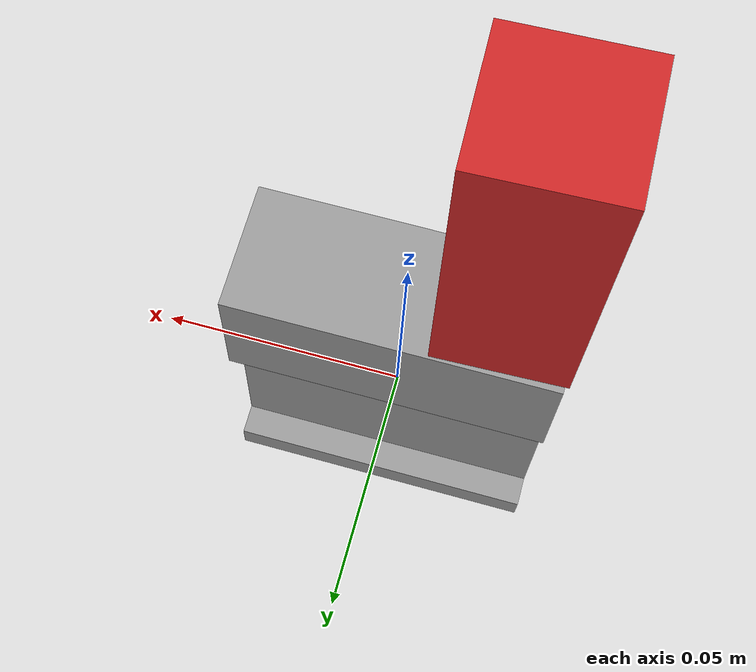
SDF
<?xml version='1.0'?>
<sdf version='1.6'>
  <model name='nerf'>
    <link name='link_0'>
      <inertial>
        <mass>0.0125</mass>
        <inertia>
          <ixx>6.9e-07</ixx>
          <ixy>0</ixy>
          <ixz>0</ixz>
          <iyy>4.24e-06</iyy>
          <iyz>0</iyz>
          <izz>4.85e-06</izz>
        </inertia>
        <pose frame=''>0 0 0 0 -0 0</pose>
      </inertial>
      <pose frame=''>-0 -0 -0.027558 0 -0 0</pose>
      <gravity>1</gravity>
      <self_collide>0</self_collide>
      <kinematic>0</kinematic>
      <enable_wind>0</enable_wind>
      <visual name='visual'>
        <pose frame=''>0 0 0 0 -0 0</pose>
        <geometry>
          <box>
            <size>0.0635 0.025 0.00635</size>
          </box>
        </geometry>
        <material>
          <lighting>1</lighting>
          <script>
            <uri>file://media/materials/scripts/gazebo.material</uri>
            <name>Gazebo/Grey</name>
          </script>
          <shader type='pixel'>
            <normal_map>__default__</normal_map>
          </shader>
          <ambient>0.3 0.3 0.3 1</ambient>
          <diffuse>0.7 0.7 0.7 1</diffuse>
          <specular>0.01 0.01 0.01 1</specular>
          <emissive>0 0 0 1</emissive>
        </material>
        <transparency>0</transparency>
        <cast_shadows>1</cast_shadows>
      </visual>
      <collision name='collision'>
        <laser_retro>0</laser_retro>
        <max_contacts>10</max_contacts>
        <pose frame=''>0 0 0 0 -0 0</pose>
        <geometry>
          <box>
            <size>0.0635 0.025 0.00635</size>
          </box>
        </geometry>
        <surface>
          <friction>
            <ode>
              <mu>1</mu>
              <mu2>1</mu2>
              <fdir1>0 0 0</fdir1>
              <slip1>0</slip1>
              <slip2>0</slip2>
            </ode>
            <torsional>
              <coefficient>1</coefficient>
              <patch_radius>0</patch_radius>
              <surface_radius>0</surface_radius>
              <use_patch_radius>1</use_patch_radius>
              <ode>
                <slip>0</slip>
              </ode>
            </torsional>
          </friction>
          <bounce>
            <restitution_coefficient>0</restitution_coefficient>
            <threshold>1e+06</threshold>
          </bounce>
          <contact>
            <collide_without_contact>0</collide_without_contact>
            <collide_without_contact_bitmask>1</collide_without_contact_bitmask>
            <collide_bitmask>1</collide_bitmask>
            <ode>
              <soft_cfm>0</soft_cfm>
              <soft_erp>0.2</soft_erp>
              <kp>1e+13</kp>
              <kd>1</kd>
              <max_vel>0.01</max_vel>
              <min_depth>0</min_depth>
            </ode>
            <bullet>
              <split_impulse>1</split_impulse>
              <split_impulse_penetration_threshold>-0.01</split_impulse_penetration_threshold>
              <soft_cfm>0</soft_cfm>
              <soft_erp>0.2</soft_erp>
              <kp>1e+13</kp>
              <kd>1</kd>
            </bullet>
          </contact>
        </surface>
      </collision>
    </link>
    <link name='link_0_0'>
      <inertial>
        <mass>0.0509448</mass>
        <inertia>
          <ixx>2.042e-05</ixx>
          <ixy>0</ixy>
          <ixz>0</ixz>
          <iyy>2.051e-05</iyy>
          <iyz>0</iyz>
          <izz>5.39e-06</izz>
        </inertia>
        <pose frame=''>0 0 0 0 -0 0</pose>
      </inertial>
      <pose frame=''>-0.019415 -0.00061 0.077295 1e-05 6.4e-05 0.031358</pose>
      <gravity>1</gravity>
      <self_collide>0</self_collide>
      <kinematic>0</kinematic>
      <enable_wind>0</enable_wind>
      <visual name='visual'>
        <pose frame=''>0 0 0 0 -0 0</pose>
        <geometry>
          <box>
            <size>0.0254 0.025 0.0647</size>
          </box>
        </geometry>
        <material>
          <lighting>1</lighting>
          <script>
            <uri>file://media/materials/scripts/gazebo.material</uri>
            <name>Gazebo/Red</name>
          </script>
          <shader type='pixel'>
            <normal_map>__default__</normal_map>
          </shader>
          <ambient>0.3 0.3 0.3 1</ambient>
          <diffuse>0.7 0.7 0.7 1</diffuse>
          <specular>0.01 0.01 0.01 1</specular>
          <emissive>0 0 0 1</emissive>
        </material>
        <transparency>0</transparency>
        <cast_shadows>1</cast_shadows>
      </visual>
      <collision name='collision'>
        <laser_retro>0</laser_retro>
        <max_contacts>10</max_contacts>
        <pose frame=''>0 0 0 0 -0 0</pose>
        <geometry>
          <box>
            <size>0.0254 0.025 0.0647</size>
          </box>
        </geometry>
        <surface>
          <friction>
            <ode>
              <mu>1</mu>
              <mu2>1</mu2>
              <fdir1>0 0 0</fdir1>
              <slip1>0</slip1>
              <slip2>0</slip2>
            </ode>
            <torsional>
              <coefficient>1</coefficient>
              <patch_radius>0</patch_radius>
              <surface_radius>0</surface_radius>
              <use_patch_radius>1</use_patch_radius>
              <ode>
                <slip>0</slip>
              </ode>
            </torsional>
          </friction>
          <bounce>
            <restitution_coefficient>0</restitution_coefficient>
            <threshold>1e+06</threshold>
          </bounce>
          <contact>
            <collide_without_contact>0</collide_without_contact>
            <collide_without_contact_bitmask>1</collide_without_contact_bitmask>
            <collide_bitmask>1</collide_bitmask>
            <ode>
              <soft_cfm>0</soft_cfm>
              <soft_erp>0.2</soft_erp>
              <kp>1e+13</kp>
              <kd>1</kd>
              <max_vel>0.01</max_vel>
              <min_depth>0</min_depth>
            </ode>
            <bullet>
              <split_impulse>1</split_impulse>
              <split_impulse_penetration_threshold>-0.01</split_impulse_penetration_threshold>
              <soft_cfm>0</soft_cfm>
              <soft_erp>0.2</soft_erp>
              <kp>1e+13</kp>
              <kd>1</kd>
            </bullet>
          </contact>
        </surface>
      </collision>
    </link>
    <link name='link_1'>
      <inertial>
        <mass>0.0413385</mass>
        <inertia>
          <ixx>6.62e-06</ixx>
          <ixy>0</ixy>
          <ixz>0</ixz>
          <iyy>1.997e-05</iyy>
          <iyz>0</iyz>
          <izz>1.443e-05</izz>
        </inertia>
        <pose frame=''>0 0 0 0 -0 0</pose>
      </inertial>
      <pose frame=''>0 -0 -0.003383 0 -0 0</pose>
      <gravity>1</gravity>
      <self_collide>0</self_collide>
      <kinematic>0</kinematic>
      <enable_wind>0</enable_wind>
      <visual name='visual'>
        <pose frame=''>0 0 0 0 -0 0</pose>
        <geometry>
          <box>
            <size>0.0635 0.0125 0.042</size>
          </box>
        </geometry>
        <material>
          <lighting>1</lighting>
          <script>
            <uri>file://media/materials/scripts/gazebo.material</uri>
            <name>Gazebo/Grey</name>
          </script>
          <shader type='pixel'>
            <normal_map>__default__</normal_map>
          </shader>
          <emissive>0 0 0 1</emissive>
          <ambient>0.3 0.3 0.3 1</ambient>
          <diffuse>0.7 0.7 0.7 1</diffuse>
          <specular>0.01 0.01 0.01 1</specular>
        </material>
        <transparency>0</transparency>
        <cast_shadows>1</cast_shadows>
      </visual>
      <collision name='collision'>
        <laser_retro>0</laser_retro>
        <max_contacts>10</max_contacts>
        <pose frame=''>0 0 0 0 -0 0</pose>
        <geometry>
          <box>
            <size>0.0635 0.0125 0.042</size>
          </box>
        </geometry>
        <surface>
          <friction>
            <ode>
              <mu>1</mu>
              <mu2>1</mu2>
              <fdir1>0 0 0</fdir1>
              <slip1>0</slip1>
              <slip2>0</slip2>
            </ode>
            <torsional>
              <coefficient>1</coefficient>
              <patch_radius>0</patch_radius>
              <surface_radius>0</surface_radius>
              <use_patch_radius>1</use_patch_radius>
              <ode>
                <slip>0</slip>
              </ode>
            </torsional>
          </friction>
          <bounce>
            <restitution_coefficient>0</restitution_coefficient>
            <threshold>1e+06</threshold>
          </bounce>
          <contact>
            <collide_without_contact>0</collide_without_contact>
            <collide_without_contact_bitmask>1</collide_without_contact_bitmask>
            <collide_bitmask>1</collide_bitmask>
            <ode>
              <soft_cfm>0</soft_cfm>
              <soft_erp>0.2</soft_erp>
              <kp>1e+13</kp>
              <kd>1</kd>
              <max_vel>0.01</max_vel>
              <min_depth>0</min_depth>
            </ode>
            <bullet>
              <split_impulse>1</split_impulse>
              <split_impulse_penetration_threshold>-0.01</split_impulse_penetration_threshold>
              <soft_cfm>0</soft_cfm>
              <soft_erp>0.2</soft_erp>
              <kp>1e+13</kp>
              <kd>1</kd>
            </bullet>
          </contact>
        </surface>
      </collision>
    </link>
    <link name='link_2'>
      <inertial>
        <mass>0.0524605</mass>
        <inertia>
          <ixx>5.84e-06</ixx>
          <ixy>0</ixy>
          <ixz>0</ixz>
          <iyy>2.073e-05</iyy>
          <iyz>0</iyz>
          <izz>2.036e-05</izz>
        </inertia>
        <pose frame=''>0 0 0 0 -0 0</pose>
      </inertial>
      <pose frame=''>0 -0 0.030942 0 -0 0</pose>
      <gravity>1</gravity>
      <self_collide>0</self_collide>
      <kinematic>0</kinematic>
      <enable_wind>0</enable_wind>
      <visual name='visual'>
        <pose frame=''>0 0 0 0 -0 0</pose>
        <geometry>
          <box>
            <size>0.0635 0.025 0.02665</size>
          </box>
        </geometry>
        <material>
          <lighting>1</lighting>
          <script>
            <uri>file://media/materials/scripts/gazebo.material</uri>
            <name>Gazebo/Grey</name>
          </script>
          <shader type='pixel'>
            <normal_map>__default__</normal_map>
          </shader>
          <ambient>0.3 0.3 0.3 1</ambient>
          <diffuse>0.7 0.7 0.7 1</diffuse>
          <specular>0.01 0.01 0.01 1</specular>
          <emissive>0 0 0 1</emissive>
        </material>
        <transparency>0</transparency>
        <cast_shadows>1</cast_shadows>
      </visual>
      <collision name='collision'>
        <laser_retro>0</laser_retro>
        <max_contacts>10</max_contacts>
        <pose frame=''>0 0 0 0 -0 0</pose>
        <geometry>
          <box>
            <size>0.0635 0.025 0.02665</size>
          </box>
        </geometry>
        <surface>
          <friction>
            <ode>
              <mu>1</mu>
              <mu2>1</mu2>
              <fdir1>0 0 0</fdir1>
              <slip1>0</slip1>
              <slip2>0</slip2>
            </ode>
            <torsional>
              <coefficient>1</coefficient>
              <patch_radius>0</patch_radius>
              <surface_radius>0</surface_radius>
              <use_patch_radius>1</use_patch_radius>
              <ode>
                <slip>0</slip>
              </ode>
            </torsional>
          </friction>
          <bounce>
            <restitution_coefficient>0</restitution_coefficient>
            <threshold>1e+06</threshold>
          </bounce>
          <contact>
            <collide_without_contact>0</collide_without_contact>
            <collide_without_contact_bitmask>1</collide_without_contact_bitmask>
            <collide_bitmask>1</collide_bitmask>
            <ode>
              <soft_cfm>0</soft_cfm>
              <soft_erp>0.2</soft_erp>
              <kp>1e+13</kp>
              <kd>1</kd>
              <max_vel>0.01</max_vel>
              <min_depth>0</min_depth>
            </ode>
            <bullet>
              <split_impulse>1</split_impulse>
              <split_impulse_penetration_threshold>-0.01</split_impulse_penetration_threshold>
              <soft_cfm>0</soft_cfm>
              <soft_erp>0.2</soft_erp>
              <kp>1e+13</kp>
              <kd>1</kd>
            </bullet>
          </contact>
        </surface>
      </collision>
    </link>
    <joint name='link_0_JOINT_0' type='fixed'>
      <parent>link_0</parent>
      <child>link_1</child>
      <pose frame=''>0 0 0 0 -0 0</pose>
      <physics>
        <ode>
          <limit>
            <cfm>0</cfm>
            <erp>0.2</erp>
          </limit>
          <suspension>
            <cfm>0</cfm>
            <erp>0.2</erp>
          </suspension>
        </ode>
      </physics>
    </joint>
    <joint name='link_1_JOINT_3' type='fixed'>
      <parent>link_1</parent>
      <child>link_2</child>
      <pose frame=''>0 0 0 0 -0 0</pose>
      <physics>
        <ode>
          <limit>
            <cfm>0</cfm>
            <erp>0.2</erp>
          </limit>
          <suspension>
            <cfm>0</cfm>
            <erp>0.2</erp>
          </suspension>
        </ode>
      </physics>
    </joint>
    <joint name='link_2_JOINT_2' type='fixed'>
      <parent>link_2</parent>
      <child>link_0_0</child>
      <pose frame=''>0 0 0 0 -0 0</pose>
      <physics>
        <ode>
          <limit>
            <cfm>0</cfm>
            <erp>0.2</erp>
          </limit>
          <suspension>
            <cfm>0</cfm>
            <erp>0.2</erp>
          </suspension>
        </ode>
      </physics>
    </joint>
    <static>0</static>
    <allow_auto_disable>1</allow_auto_disable>
  </model>
</sdf>
